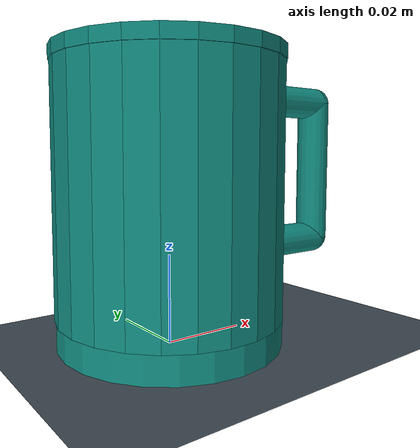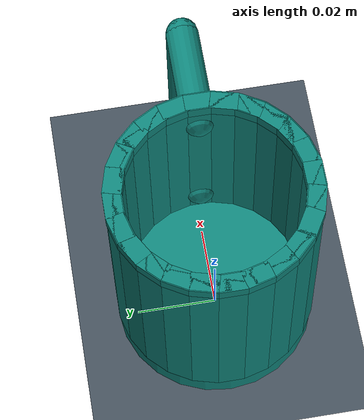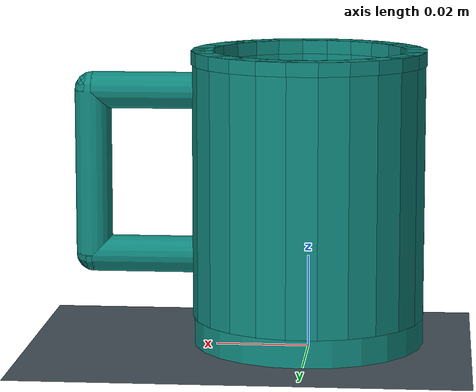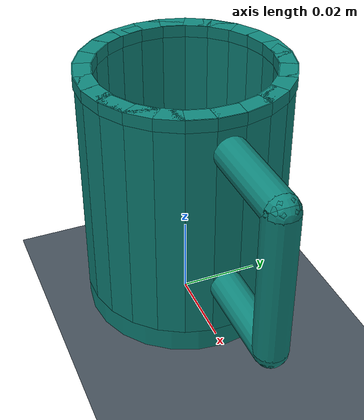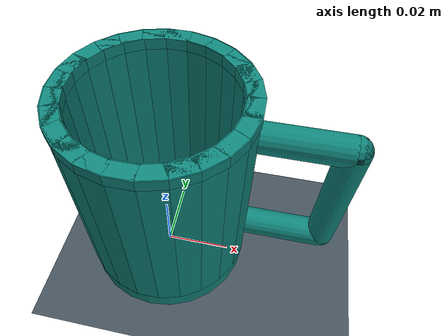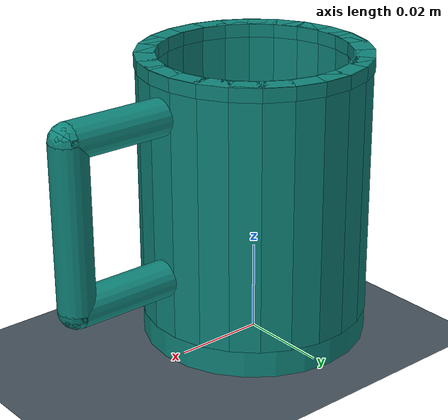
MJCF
<mujoco model="duet2_mug">
  <compiler angle="radian" autolimits="true" />
  <option timestep=".005" integrator="implicitfast" cone="elliptic" iterations="30" />
  <asset>
    <material name="base_motor_holder_so101_v1_material" rgba="1 0.82 0.12 1" />
    <material name="base_so101_v2_material" rgba="1 0.82 0.12 1" />
    <material name="sts3215_03a_v1_material" rgba="0.1 0.1 0.1 1" />
    <material name="waveshare_mounting_plate_so101_v2_material" rgba="1 0.82 0.12 1" />
    <material name="motor_holder_so101_base_v1_material" rgba="1 0.82 0.12 1" />
    <material name="rotation_pitch_so101_v1_material" rgba="1 0.82 0.12 1" />
    <material name="upper_arm_so101_v1_material" rgba="1 0.82 0.12 1" />
    <material name="under_arm_so101_v1_material" rgba="1 0.82 0.12 1" />
    <material name="motor_holder_so101_wrist_v1_material" rgba="1 0.82 0.12 1" />
    <material name="sts3215_03a_no_horn_v1_material" rgba="0.1 0.1 0.1 1.0" />
    <material name="wrist_roll_pitch_so101_v2_material" rgba="1 0.82 0.12 1" />
    <material name="wrist_roll_follower_so101_v1_material" rgba="1 0.82 0.12 1" />
    <material name="moving_jaw_so101_v1_material" rgba="1 0.82 0.12 1" />
    <texture name="sky" type="skybox" builtin="gradient" rgb1="0.15 0.21 0.29" rgb2="0.04 0.07 0.12" width="512" height="3072" />
    <texture name="floor_tex" type="2d" builtin="checker" width="512" height="512" rgb1="0.18 0.22 0.28" rgb2="0.20 0.24 0.30" />
    <material name="floor_mat" texture="floor_tex" texrepeat="8 8" reflectance="0.05" />
    <material name="table_mat" rgba=".69 .53 .37 1" specular="0.25" shininess="0.3" />
    <material name="edge_mat" rgba="0.07 0.12 0.17 1" specular="0.45" />
    <material name="tube_mat" rgba="0.71 0.88 0.94 0.78" specular="0.6" shininess="0.8" />
    <material name="ceramic" rgba=".95 .95 .90 1" specular=".3" shininess=".65" />
    <material name="plate_blue" rgba=".33 .51 .76 1" specular=".35" shininess=".65" />
    <material name="plate_gold" rgba=".81 .56 .28 1" specular=".35" shininess=".65" />
    <material name="mug_teal" rgba=".06 .53 .49 1" specular=".4" shininess=".65" />
    <material name="clear_glass" rgba=".66 .87 .92 .30" specular=".75" shininess=".65" />
    <material name="glass_rim" rgba=".62 .84 .89 .8" specular=".6" shininess=".65" />
    <material name="amber_glass" rgba=".55 .32 .13 .78" specular=".6" shininess=".65" />
    <material name="bottle_label" rgba=".96 .91 .72 1" specular=".1" shininess=".65" />
    <material name="steel" rgba=".72 .78 .83 1" specular=".85" shininess=".65" />
    <material name="drawer_wood" rgba=".37 .21 .12 1" specular=".2" shininess=".65" />
    <material name="drawer_lining" rgba=".20 .28 .27 1" specular=".1" shininess=".65" />
  </asset>
  <worldbody>
    <light pos="0 -.3 2" dir="0 0 -1" />
    <geom name="inspection_floor" type="plane" size=".4 .4 .05" pos="0 0 0.0" rgba=".27 .32 .36 1" />
    <body name="mug" pos="0 0 0.001" euler="0 0 0">
      <freejoint name="mug_free" />
      <inertial pos="0 0 0.032" mass="0.045" diaginertia="2.4735e-05 3.759375e-05 3.160875e-05" />
      <geom name="mug_base" type="cylinder" size="0.025 0.007" pos="0 0 0.007" mass="0" friction="0.8 0.005 0.0001" condim="4" solref=".012 1" material="mug_teal" />
      <geom name="mug_wall_0" type="box" size="0.002 0.0032913124 0.029" pos="0.023 0 0.035" mass="0" friction="0.8 0.005 0.0001" condim="4" solref=".012 1" euler="0 0 0" material="mug_teal" />
      <geom name="mug_wall_1" type="box" size="0.002 0.0032913124 0.029" pos="0.022216294 0.005952838 0.035" mass="0" friction="0.8 0.005 0.0001" condim="4" solref=".012 1" euler="0 0 0.26179939" material="mug_teal" />
      <geom name="mug_wall_2" type="box" size="0.002 0.0032913124 0.029" pos="0.019918584 0.0115 0.035" mass="0" friction="0.8 0.005 0.0001" condim="4" solref=".012 1" euler="0 0 0.52359878" material="mug_teal" />
      <geom name="mug_wall_3" type="box" size="0.002 0.0032913124 0.029" pos="0.016263456 0.016263456 0.035" mass="0" friction="0.8 0.005 0.0001" condim="4" solref=".012 1" euler="0 0 0.78539816" material="mug_teal" />
      <geom name="mug_wall_4" type="box" size="0.002 0.0032913124 0.029" pos="0.0115 0.019918584 0.035" mass="0" friction="0.8 0.005 0.0001" condim="4" solref=".012 1" euler="0 0 1.0471976" material="mug_teal" />
      <geom name="mug_wall_5" type="box" size="0.002 0.0032913124 0.029" pos="0.005952838 0.022216294 0.035" mass="0" friction="0.8 0.005 0.0001" condim="4" solref=".012 1" euler="0 0 1.3089969" material="mug_teal" />
      <geom name="mug_wall_6" type="box" size="0.002 0.0032913124 0.029" pos="1.4083438e-18 0.023 0.035" mass="0" friction="0.8 0.005 0.0001" condim="4" solref=".012 1" euler="0 0 1.5707963" material="mug_teal" />
      <geom name="mug_wall_7" type="box" size="0.002 0.0032913124 0.029" pos="-0.005952838 0.022216294 0.035" mass="0" friction="0.8 0.005 0.0001" condim="4" solref=".012 1" euler="0 0 1.8325957" material="mug_teal" />
      <geom name="mug_wall_8" type="box" size="0.002 0.0032913124 0.029" pos="-0.0115 0.019918584 0.035" mass="0" friction="0.8 0.005 0.0001" condim="4" solref=".012 1" euler="0 0 2.0943951" material="mug_teal" />
      <geom name="mug_wall_9" type="box" size="0.002 0.0032913124 0.029" pos="-0.016263456 0.016263456 0.035" mass="0" friction="0.8 0.005 0.0001" condim="4" solref=".012 1" euler="0 0 2.3561945" material="mug_teal" />
      <geom name="mug_wall_10" type="box" size="0.002 0.0032913124 0.029" pos="-0.019918584 0.0115 0.035" mass="0" friction="0.8 0.005 0.0001" condim="4" solref=".012 1" euler="0 0 2.6179939" material="mug_teal" />
      <geom name="mug_wall_11" type="box" size="0.002 0.0032913124 0.029" pos="-0.022216294 0.005952838 0.035" mass="0" friction="0.8 0.005 0.0001" condim="4" solref=".012 1" euler="0 0 2.8797933" material="mug_teal" />
      <geom name="mug_wall_12" type="box" size="0.002 0.0032913124 0.029" pos="-0.023 2.8166876e-18 0.035" mass="0" friction="0.8 0.005 0.0001" condim="4" solref=".012 1" euler="0 0 3.1415927" material="mug_teal" />
      <geom name="mug_wall_13" type="box" size="0.002 0.0032913124 0.029" pos="-0.022216294 -0.005952838 0.035" mass="0" friction="0.8 0.005 0.0001" condim="4" solref=".012 1" euler="0 0 3.403392" material="mug_teal" />
      <geom name="mug_wall_14" type="box" size="0.002 0.0032913124 0.029" pos="-0.019918584 -0.0115 0.035" mass="0" friction="0.8 0.005 0.0001" condim="4" solref=".012 1" euler="0 0 3.6651914" material="mug_teal" />
      <geom name="mug_wall_15" type="box" size="0.002 0.0032913124 0.029" pos="-0.016263456 -0.016263456 0.035" mass="0" friction="0.8 0.005 0.0001" condim="4" solref=".012 1" euler="0 0 3.9269908" material="mug_teal" />
      <geom name="mug_wall_16" type="box" size="0.002 0.0032913124 0.029" pos="-0.0115 -0.019918584 0.035" mass="0" friction="0.8 0.005 0.0001" condim="4" solref=".012 1" euler="0 0 4.1887902" material="mug_teal" />
      <geom name="mug_wall_17" type="box" size="0.002 0.0032913124 0.029" pos="-0.005952838 -0.022216294 0.035" mass="0" friction="0.8 0.005 0.0001" condim="4" solref=".012 1" euler="0 0 4.4505896" material="mug_teal" />
      <geom name="mug_wall_18" type="box" size="0.002 0.0032913124 0.029" pos="-4.2250315e-18 -0.023 0.035" mass="0" friction="0.8 0.005 0.0001" condim="4" solref=".012 1" euler="0 0 4.712389" material="mug_teal" />
      <geom name="mug_wall_19" type="box" size="0.002 0.0032913124 0.029" pos="0.005952838 -0.022216294 0.035" mass="0" friction="0.8 0.005 0.0001" condim="4" solref=".012 1" euler="0 0 4.9741884" material="mug_teal" />
      <geom name="mug_wall_20" type="box" size="0.002 0.0032913124 0.029" pos="0.0115 -0.019918584 0.035" mass="0" friction="0.8 0.005 0.0001" condim="4" solref=".012 1" euler="0 0 5.2359878" material="mug_teal" />
      <geom name="mug_wall_21" type="box" size="0.002 0.0032913124 0.029" pos="0.016263456 -0.016263456 0.035" mass="0" friction="0.8 0.005 0.0001" condim="4" solref=".012 1" euler="0 0 5.4977871" material="mug_teal" />
      <geom name="mug_wall_22" type="box" size="0.002 0.0032913124 0.029" pos="0.019918584 -0.0115 0.035" mass="0" friction="0.8 0.005 0.0001" condim="4" solref=".012 1" euler="0 0 5.7595865" material="mug_teal" />
      <geom name="mug_wall_23" type="box" size="0.002 0.0032913124 0.029" pos="0.022216294 -0.005952838 0.035" mass="0" friction="0.8 0.005 0.0001" condim="4" solref=".012 1" euler="0 0 6.0213859" material="mug_teal" />
      <geom name="mug_lip_0" type="box" size="0.00225 0.0033242256 0.0015" pos="0.023 0 0.0625" mass="0" friction="0.8 0.005 0.0001" condim="4" solref=".012 1" euler="0 0 0" material="mug_teal" />
      <geom name="mug_lip_1" type="box" size="0.00225 0.0033242256 0.0015" pos="0.022216294 0.005952838 0.0625" mass="0" friction="0.8 0.005 0.0001" condim="4" solref=".012 1" euler="0 0 0.26179939" material="mug_teal" />
      <geom name="mug_lip_2" type="box" size="0.00225 0.0033242256 0.0015" pos="0.019918584 0.0115 0.0625" mass="0" friction="0.8 0.005 0.0001" condim="4" solref=".012 1" euler="0 0 0.52359878" material="mug_teal" />
      <geom name="mug_lip_3" type="box" size="0.00225 0.0033242256 0.0015" pos="0.016263456 0.016263456 0.0625" mass="0" friction="0.8 0.005 0.0001" condim="4" solref=".012 1" euler="0 0 0.78539816" material="mug_teal" />
      <geom name="mug_lip_4" type="box" size="0.00225 0.0033242256 0.0015" pos="0.0115 0.019918584 0.0625" mass="0" friction="0.8 0.005 0.0001" condim="4" solref=".012 1" euler="0 0 1.0471976" material="mug_teal" />
      <geom name="mug_lip_5" type="box" size="0.00225 0.0033242256 0.0015" pos="0.005952838 0.022216294 0.0625" mass="0" friction="0.8 0.005 0.0001" condim="4" solref=".012 1" euler="0 0 1.3089969" material="mug_teal" />
      <geom name="mug_lip_6" type="box" size="0.00225 0.0033242256 0.0015" pos="1.4083438e-18 0.023 0.0625" mass="0" friction="0.8 0.005 0.0001" condim="4" solref=".012 1" euler="0 0 1.5707963" material="mug_teal" />
      <geom name="mug_lip_7" type="box" size="0.00225 0.0033242256 0.0015" pos="-0.005952838 0.022216294 0.0625" mass="0" friction="0.8 0.005 0.0001" condim="4" solref=".012 1" euler="0 0 1.8325957" material="mug_teal" />
      <geom name="mug_lip_8" type="box" size="0.00225 0.0033242256 0.0015" pos="-0.0115 0.019918584 0.0625" mass="0" friction="0.8 0.005 0.0001" condim="4" solref=".012 1" euler="0 0 2.0943951" material="mug_teal" />
      <geom name="mug_lip_9" type="box" size="0.00225 0.0033242256 0.0015" pos="-0.016263456 0.016263456 0.0625" mass="0" friction="0.8 0.005 0.0001" condim="4" solref=".012 1" euler="0 0 2.3561945" material="mug_teal" />
      <geom name="mug_lip_10" type="box" size="0.00225 0.0033242256 0.0015" pos="-0.019918584 0.0115 0.0625" mass="0" friction="0.8 0.005 0.0001" condim="4" solref=".012 1" euler="0 0 2.6179939" material="mug_teal" />
      <geom name="mug_lip_11" type="box" size="0.00225 0.0033242256 0.0015" pos="-0.022216294 0.005952838 0.0625" mass="0" friction="0.8 0.005 0.0001" condim="4" solref=".012 1" euler="0 0 2.8797933" material="mug_teal" />
      <geom name="mug_lip_12" type="box" size="0.00225 0.0033242256 0.0015" pos="-0.023 2.8166876e-18 0.0625" mass="0" friction="0.8 0.005 0.0001" condim="4" solref=".012 1" euler="0 0 3.1415927" material="mug_teal" />
      <geom name="mug_lip_13" type="box" size="0.00225 0.0033242256 0.0015" pos="-0.022216294 -0.005952838 0.0625" mass="0" friction="0.8 0.005 0.0001" condim="4" solref=".012 1" euler="0 0 3.403392" material="mug_teal" />
      <geom name="mug_lip_14" type="box" size="0.00225 0.0033242256 0.0015" pos="-0.019918584 -0.0115 0.0625" mass="0" friction="0.8 0.005 0.0001" condim="4" solref=".012 1" euler="0 0 3.6651914" material="mug_teal" />
      <geom name="mug_lip_15" type="box" size="0.00225 0.0033242256 0.0015" pos="-0.016263456 -0.016263456 0.0625" mass="0" friction="0.8 0.005 0.0001" condim="4" solref=".012 1" euler="0 0 3.9269908" material="mug_teal" />
      <geom name="mug_lip_16" type="box" size="0.00225 0.0033242256 0.0015" pos="-0.0115 -0.019918584 0.0625" mass="0" friction="0.8 0.005 0.0001" condim="4" solref=".012 1" euler="0 0 4.1887902" material="mug_teal" />
      <geom name="mug_lip_17" type="box" size="0.00225 0.0033242256 0.0015" pos="-0.005952838 -0.022216294 0.0625" mass="0" friction="0.8 0.005 0.0001" condim="4" solref=".012 1" euler="0 0 4.4505896" material="mug_teal" />
      <geom name="mug_lip_18" type="box" size="0.00225 0.0033242256 0.0015" pos="-4.2250315e-18 -0.023 0.0625" mass="0" friction="0.8 0.005 0.0001" condim="4" solref=".012 1" euler="0 0 4.712389" material="mug_teal" />
      <geom name="mug_lip_19" type="box" size="0.00225 0.0033242256 0.0015" pos="0.005952838 -0.022216294 0.0625" mass="0" friction="0.8 0.005 0.0001" condim="4" solref=".012 1" euler="0 0 4.9741884" material="mug_teal" />
      <geom name="mug_lip_20" type="box" size="0.00225 0.0033242256 0.0015" pos="0.0115 -0.019918584 0.0625" mass="0" friction="0.8 0.005 0.0001" condim="4" solref=".012 1" euler="0 0 5.2359878" material="mug_teal" />
      <geom name="mug_lip_21" type="box" size="0.00225 0.0033242256 0.0015" pos="0.016263456 -0.016263456 0.0625" mass="0" friction="0.8 0.005 0.0001" condim="4" solref=".012 1" euler="0 0 5.4977871" material="mug_teal" />
      <geom name="mug_lip_22" type="box" size="0.00225 0.0033242256 0.0015" pos="0.019918584 -0.0115 0.0625" mass="0" friction="0.8 0.005 0.0001" condim="4" solref=".012 1" euler="0 0 5.7595865" material="mug_teal" />
      <geom name="mug_lip_23" type="box" size="0.00225 0.0033242256 0.0015" pos="0.022216294 -0.005952838 0.0625" mass="0" friction="0.8 0.005 0.0001" condim="4" solref=".012 1" euler="0 0 6.0213859" material="mug_teal" />
      <geom name="mug_handle_0.019" type="capsule" size="0.004 0.012" pos="0.035 0 0.019" mass="0" friction="0.8 0.005 0.0001" condim="4" solref=".012 1" quat="0.70710678 0 0.70710678 0" material="mug_teal" />
      <geom name="mug_handle_0.055" type="capsule" size="0.004 0.012" pos="0.035 0 0.055" mass="0" friction="0.8 0.005 0.0001" condim="4" solref=".012 1" quat="0.70710678 0 0.70710678 0" material="mug_teal" />
      <geom name="mug_handle_grip" type="capsule" size="0.004 0.018" pos="0.047 0 0.037" mass="0" friction="0.8 0.005 0.0001" condim="4" solref=".012 1" material="mug_teal" />
      <site name="mug_grasp" pos="0.047 0 0.041" size=".002" group="4" rgba="0 1 0 1" />
    </body>
  </worldbody>
</mujoco>
